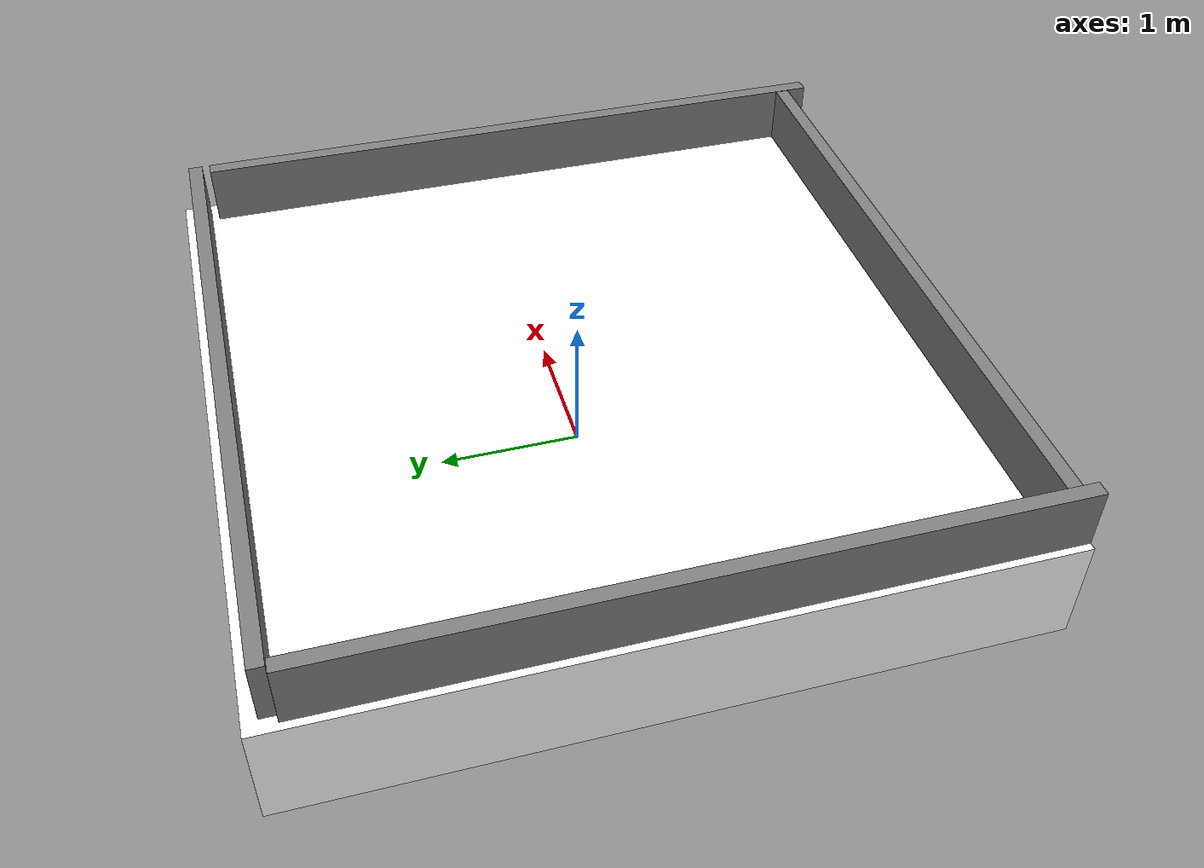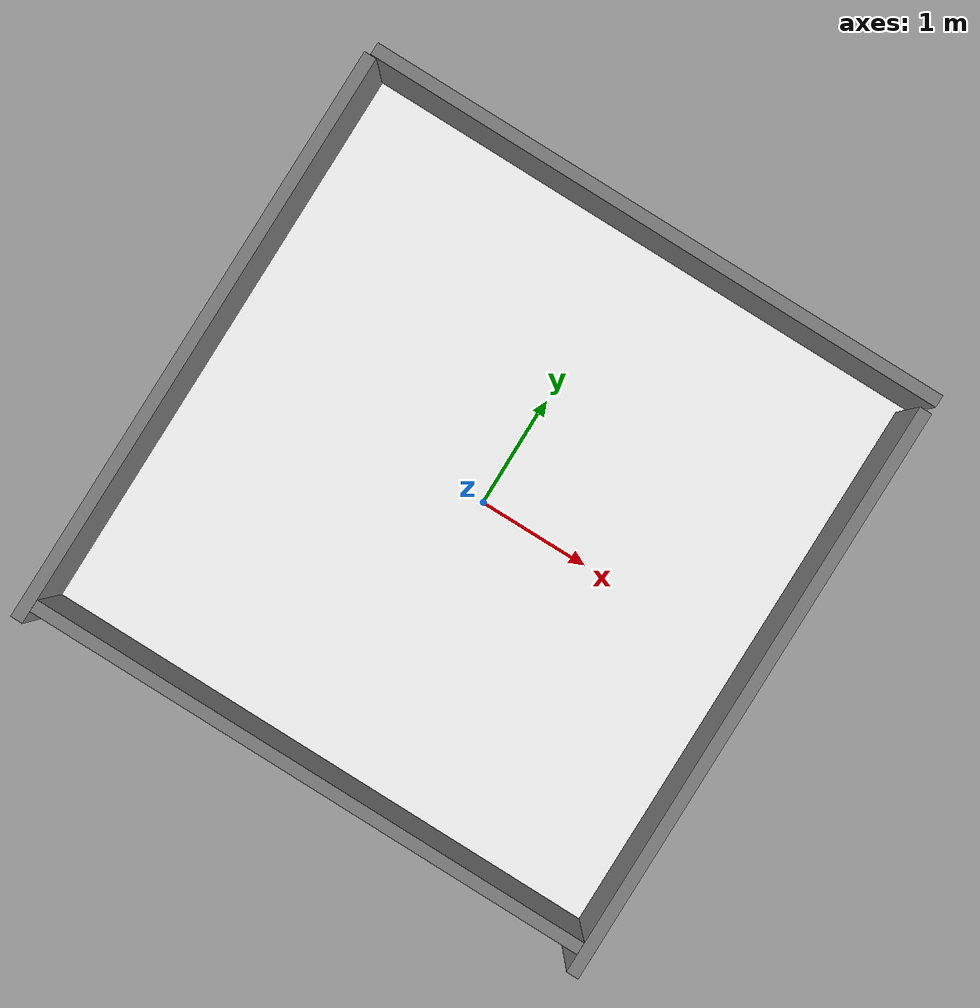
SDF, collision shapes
<?xml version='1.0'?>

<sdf version="1.6">
  <model name="arene">
    <static>true</static>
    <link name="base_link">
      <pose>-2.5 2.5 0.0 1.57 0 0</pose>
      <visual name="base_visual">
        <geometry>
          <mesh>
            <uri>model://arene/meshes/arene_base.STL</uri>
            <scale> 0.001 0.001 0.001 </scale>
          </mesh>
        </geometry>
        <material>
          <ambient>0.9 0.9 0.9 1</ambient>
	  <diffuse>1 1 1 1</diffuse>
	  <specular>0.5 0.5 0.5 1</specular>
        </material>
      </visual>
      <collision name="base_collision">
      <pose>2.5 0.4 2.5 1.57 0 0</pose>
        <geometry>
          <box>
            <size>5 5 0.75</size>
          </box>
        </geometry>
      </collision>
      <inertial>
        <mass>100.0</mass>
        <inertia>
            <ixx>0.0</ixx>
            <ixy>0.0</ixy>
            <ixz>0.0</ixz>
            <iyy>0.0</iyy>
            <iyz>0.0</iyz>
            <izz>0.0</izz>
        </inertia>
      </inertial>
    </link>

    <!-- Frame Left Link -->
    <link name="frame_left_link">
      <pose>-2.4 2.355 0.6 1.57 0 0</pose>
      <visual name="frame_left_visual">
        <geometry>
          <mesh>
            <uri>model://arene/meshes/arene_frame.STL</uri>
            <scale>0.001 0.001 0.001</scale>
          </mesh>
        </geometry>
        <material>
          <ambient>0.5 0.5 0.5 1</ambient>
          <diffuse>0.5 0.5 0.5 1</diffuse>
          <specular>0.5 0.5 0.5 1</specular>
        </material>
      </visual>
      <collision name="frame_left_collision">
        <pose>2.4 0.3 0.0 1.57 0 0</pose>
        <geometry>
          <box>
            <size>4.8 0.1 0.6</size>
          </box>
        </geometry>
      </collision>
      <inertial>
        <mass>25.0</mass>
        <inertia>
          <ixx>0.0</ixx>
          <ixy>0.0</ixy>
          <ixz>0.0</ixz>
          <iyy>0.0</iyy>
          <iyz>0.0</iyz>
          <izz>0.0</izz>
        </inertia>
      </inertial>
    </link>

    <!-- Frame Right Link -->
    <link name="frame_right_link">
      <pose>2.4 -2.355 0.6 1.57 0 3.14</pose>
      <visual name="frame_right_visual">
        <geometry>
          <mesh>
            <uri>model://arene/meshes/arene_frame.STL</uri>
            <scale>0.001 0.001 0.001</scale>
          </mesh>
        </geometry>
        <material>
          <ambient>0.5 0.5 0.5 1</ambient>
          <diffuse>0.5 0.5 0.5 1</diffuse>
          <specular>0.5 0.5 0.5 1</specular>
        </material>
      </visual>
      <collision name="frame_right_collision">
        <pose>2.4 0.3 0.0 1.57 0 0</pose>
        <geometry>
          <box>
            <size>4.8 0.1 0.6</size>
          </box>
        </geometry>
      </collision>
      <inertial>
        <mass>25.0</mass>
        <inertia>
          <ixx>0.0</ixx>
          <ixy>0.0</ixy>
          <ixz>0.0</ixz>
          <iyy>0.0</iyy>
          <iyz>0.0</iyz>
          <izz>0.0</izz>
        </inertia>
      </inertial>
    </link>

    <!-- Frame Front Link -->
    <link name="frame_front_link">
      <pose>-2.4 2.4 0.6 1.57 0 0</pose>
      <visual name="frame_front_visual">
        <geometry>
          <mesh>
            <uri>model://arene/meshes/arene_frame_with_door.STL</uri>
            <scale>0.001 0.001 0.001</scale>
          </mesh>
        </geometry>
        <material>
          <ambient>0.5 0.5 0.5 1</ambient>
          <diffuse>0.5 0.5 0.5 1</diffuse>
          <specular>0.5 0.5 0.5 1</specular>
        </material>
      </visual>
      <collision name="frame_front_collision">
        <pose>0.0 0.3 2.5 1.57 1.57 0</pose>
        <geometry>
          <box>
            <size>4.8 0.1 0.6</size>
          </box>
        </geometry>
      </collision>
      <inertial>
        <mass>25.0</mass>
        <inertia>
          <ixx>0.0</ixx>
          <ixy>0.0</ixy>
          <ixz>0.0</ixz>
          <iyy>0.0</iyy>
          <iyz>0.0</iyz>
          <izz>0.0</izz>
        </inertia>
      </inertial>
    </link>

    <!-- Frame Back Link -->
    <link name="frame_back_link">
      <pose>2.35 2.35 0.6 1.57 0 0</pose>
      <visual name="frame_back_visual">
        <geometry>
          <mesh>
            <uri>model://arene/meshes/arene_frame_with_door.STL</uri>
            <scale>0.001 0.001 0.001</scale>
          </mesh>
        </geometry>
        <material>
          <ambient>0.5 0.5 0.5 1</ambient>
          <diffuse>0.5 0.5 0.5 1</diffuse>
          <specular>0.5 0.5 0.5 1</specular>
        </material>
      </visual>
      <collision name="frame_back_collision">
        <pose>0.0 0.3 2.5 1.57 1.57 0</pose>
        <geometry>
          <box>
            <size>4.8 0.1 0.6</size>
          </box>
        </geometry>
      </collision>
      <inertial>
        <mass>25.0</mass>
        <inertia>
          <ixx>0.0</ixx>
          <ixy>0.0</ixy>
          <ixz>0.0</ixz>
          <iyy>0.0</iyy>
          <iyz>0.0</iyz>
          <izz>0.0</izz>
        </inertia>
      </inertial>
    </link>

  </model>
</sdf>
